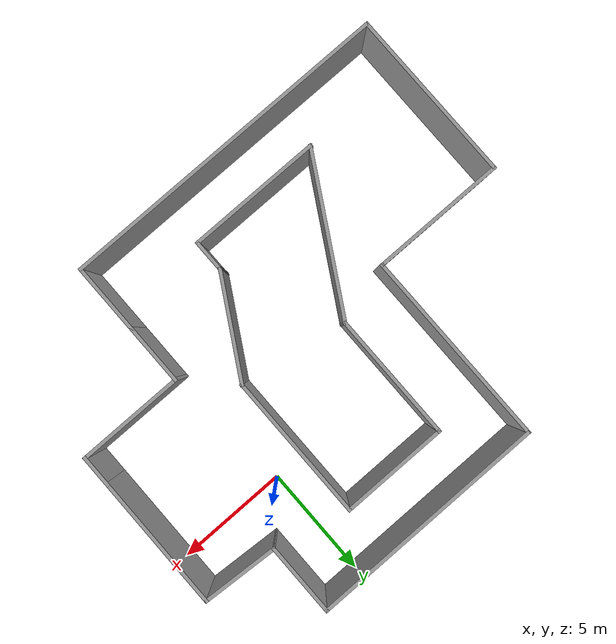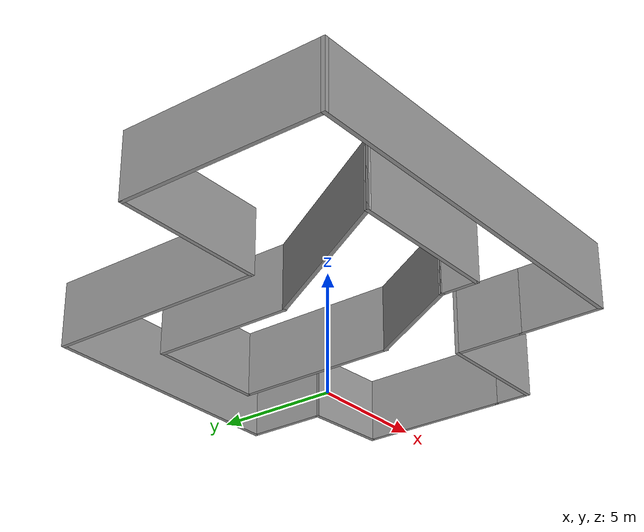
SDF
<?xml version='1.0'?>
<sdf version='1.6'>
  <model name='room4'>
    <pose frame=''>-4.96735 -3.31756 0 0 -0 0</pose>
    <link name='Wall_10'>
      <collision name='Wall_10_Collision'>
        <geometry>
          <box>
            <size>2.75 0.15 2.5</size>
          </box>
        </geometry>
        <pose frame=''>0 0 1.25 0 -0 0</pose>
      </collision>
      <visual name='Wall_10_Visual'>
        <pose frame=''>0 0 1.25 0 -0 0</pose>
        <geometry>
          <box>
            <size>2.75 0.15 2.5</size>
          </box>
        </geometry>
        <material>
          <script>
            <uri>file://media/materials/scripts/gazebo.material</uri>
            <name>Gazebo/Grey</name>
          </script>
          <ambient>1 1 1 1</ambient>
        </material>
      </visual>
      <pose frame=''>5.12277 -3.7 0 0 0 -1.5708</pose>
    </link>
    <link name='Wall_11'>
      <collision name='Wall_11_Collision'>
        <geometry>
          <box>
            <size>3.25 0.15 2.5</size>
          </box>
        </geometry>
        <pose frame=''>0 0 1.25 0 -0 0</pose>
      </collision>
      <visual name='Wall_11_Visual'>
        <pose frame=''>0 0 1.25 0 -0 0</pose>
        <geometry>
          <box>
            <size>3.25 0.15 2.5</size>
          </box>
        </geometry>
        <material>
          <script>
            <uri>file://media/materials/scripts/gazebo.material</uri>
            <name>Gazebo/Grey</name>
          </script>
          <ambient>1 1 1 1</ambient>
        </material>
      </visual>
      <pose frame=''>5.12277 -6.55 0 0 0 -1.5708</pose>
    </link>
    <link name='Wall_12'>
      <collision name='Wall_12_Collision'>
        <geometry>
          <box>
            <size>15 0.15 2.5</size>
          </box>
        </geometry>
        <pose frame=''>0 0 1.25 0 -0 0</pose>
      </collision>
      <visual name='Wall_12_Visual'>
        <pose frame=''>0 0 1.25 0 -0 0</pose>
        <geometry>
          <box>
            <size>15 0.15 2.5</size>
          </box>
        </geometry>
        <material>
          <script>
            <uri>file://media/materials/scripts/gazebo.material</uri>
            <name>Gazebo/Grey</name>
          </script>
          <ambient>1 1 1 1</ambient>
        </material>
      </visual>
      <pose frame=''>-2.30223 -8.1 0 0 -0 3.14159</pose>
    </link>
    <link name='Wall_13'>
      <collision name='Wall_13_Collision'>
        <geometry>
          <box>
            <size>7.75 0.15 2.5</size>
          </box>
        </geometry>
        <pose frame=''>0 0 1.25 0 -0 0</pose>
      </collision>
      <visual name='Wall_13_Visual'>
        <pose frame=''>0 0 1.25 0 -0 0</pose>
        <geometry>
          <box>
            <size>7.75 0.15 2.5</size>
          </box>
        </geometry>
        <material>
          <script>
            <uri>file://media/materials/scripts/gazebo.material</uri>
            <name>Gazebo/Grey</name>
          </script>
          <ambient>1 1 1 1</ambient>
        </material>
      </visual>
      <pose frame=''>-9.72723 -4.3 0 0 -0 1.5708</pose>
    </link>
    <link name='Wall_14'>
      <collision name='Wall_14_Collision'>
        <geometry>
          <box>
            <size>6 0.15 2.5</size>
          </box>
        </geometry>
        <pose frame=''>0 0 1.25 0 -0 0</pose>
      </collision>
      <visual name='Wall_14_Visual'>
        <pose frame=''>0 0 1.25 0 -0 0</pose>
        <geometry>
          <box>
            <size>6 0.15 2.5</size>
          </box>
        </geometry>
        <material>
          <script>
            <uri>file://media/materials/scripts/gazebo.material</uri>
            <name>Gazebo/Grey</name>
          </script>
          <ambient>1 1 1 1</ambient>
        </material>
      </visual>
      <pose frame=''>-6.80223 -0.5 0 0 -0 0</pose>
    </link>
    <link name='Wall_15'>
      <collision name='Wall_15_Collision'>
        <geometry>
          <box>
            <size>8.75 0.15 2.5</size>
          </box>
        </geometry>
        <pose frame=''>0 0 1.25 0 -0 0</pose>
      </collision>
      <visual name='Wall_15_Visual'>
        <pose frame=''>0 0 1.25 0 -0 0</pose>
        <geometry>
          <box>
            <size>8.75 0.15 2.5</size>
          </box>
        </geometry>
        <material>
          <script>
            <uri>file://media/materials/scripts/gazebo.material</uri>
            <name>Gazebo/Grey</name>
          </script>
          <ambient>1 1 1 1</ambient>
        </material>
      </visual>
      <pose frame=''>-3.87723 3.8 0 0 -0 1.5708</pose>
    </link>
    <link name='Wall_16'>
      <collision name='Wall_16_Collision'>
        <geometry>
          <box>
            <size>10.5 0.15 2.5</size>
          </box>
        </geometry>
        <pose frame=''>0 0 1.25 0 -0 0</pose>
      </collision>
      <visual name='Wall_16_Visual'>
        <pose frame=''>0 0 1.25 0 -0 0</pose>
        <geometry>
          <box>
            <size>10.5 0.15 2.5</size>
          </box>
        </geometry>
        <material>
          <script>
            <uri>file://media/materials/scripts/gazebo.material</uri>
            <name>Gazebo/Grey</name>
          </script>
          <ambient>1 1 1 1</ambient>
        </material>
      </visual>
      <pose frame=''>1.29777 8.1 0 0 -0 0</pose>
    </link>
    <link name='Wall_17'>
      <collision name='Wall_17_Collision'>
        <geometry>
          <box>
            <size>3.25 0.15 2.5</size>
          </box>
        </geometry>
        <pose frame=''>0 0 1.25 0 -0 0</pose>
      </collision>
      <visual name='Wall_17_Visual'>
        <pose frame=''>0 0 1.25 0 -0 0</pose>
        <geometry>
          <box>
            <size>3.25 0.15 2.5</size>
          </box>
        </geometry>
        <material>
          <script>
            <uri>file://media/materials/scripts/gazebo.material</uri>
            <name>Gazebo/Grey</name>
          </script>
          <ambient>1 1 1 1</ambient>
        </material>
      </visual>
      <pose frame=''>6.47277 6.55 0 0 0 -1.5708</pose>
    </link>
    <link name='Wall_18'>
      <collision name='Wall_18_Collision'>
        <geometry>
          <box>
            <size>3.40615 0.15 2.5</size>
          </box>
        </geometry>
        <pose frame=''>0 0 1.25 0 -0 0</pose>
      </collision>
      <visual name='Wall_18_Visual'>
        <pose frame=''>0 0 1.25 0 -0 0</pose>
        <geometry>
          <box>
            <size>3.40615 0.15 2.5</size>
          </box>
        </geometry>
        <material>
          <script>
            <uri>file://media/materials/scripts/gazebo.material</uri>
            <name>Gazebo/Grey</name>
          </script>
          <ambient>1 1 1 1</ambient>
        </material>
      </visual>
      <pose frame=''>8.09777 4.9 0 0 0 -0.061461</pose>
    </link>
    <link name='Wall_19'>
      <collision name='Wall_19_Collision'>
        <geometry>
          <box>
            <size>6 0.15 2.5</size>
          </box>
        </geometry>
        <pose frame=''>0 0 1.25 0 -0 0</pose>
      </collision>
      <visual name='Wall_19_Visual'>
        <pose frame=''>0 0 1.25 0 -0 0</pose>
        <geometry>
          <box>
            <size>6 0.15 2.5</size>
          </box>
        </geometry>
        <material>
          <script>
            <uri>file://media/materials/scripts/gazebo.material</uri>
            <name>Gazebo/Grey</name>
          </script>
          <ambient>1 1 1 1</ambient>
        </material>
      </visual>
      <pose frame=''>9.72277 1.875 0 0 0 -1.5708</pose>
    </link>
    <link name='Wall_23'>
      <collision name='Wall_23_Collision'>
        <geometry>
          <box>
            <size>4.75 0.15 2.5</size>
          </box>
        </geometry>
        <pose frame=''>0 0 1.25 0 -0 0</pose>
      </collision>
      <visual name='Wall_23_Visual'>
        <pose frame=''>0 0 1.25 0 -0 0</pose>
        <geometry>
          <box>
            <size>4.75 0.15 2.5</size>
          </box>
        </geometry>
        <material>
          <script>
            <uri>file://media/materials/scripts/gazebo.material</uri>
            <name>Gazebo/Grey</name>
          </script>
          <ambient>1 1 1 1</ambient>
        </material>
      </visual>
      <pose frame=''>1.00021 5.79446 0 0 -0 0</pose>
    </link>
    <link name='Wall_24'>
      <collision name='Wall_24_Collision'>
        <geometry>
          <box>
            <size>6.5 0.15 2.5</size>
          </box>
        </geometry>
        <pose frame=''>0 0 1.25 0 -0 0</pose>
      </collision>
      <visual name='Wall_24_Visual'>
        <pose frame=''>0 0 1.25 0 -0 0</pose>
        <geometry>
          <box>
            <size>6.5 0.15 2.5</size>
          </box>
        </geometry>
        <material>
          <script>
            <uri>file://media/materials/scripts/gazebo.material</uri>
            <name>Gazebo/Grey</name>
          </script>
          <ambient>1 1 1 1</ambient>
        </material>
      </visual>
      <pose frame=''>3.30021 2.61946 0 0 0 -1.5708</pose>
    </link>
    <link name='Wall_25'>
      <collision name='Wall_25_Collision'>
        <geometry>
          <box>
            <size>4.75 0.15 2.5</size>
          </box>
        </geometry>
        <pose frame=''>0 0 1.25 0 -0 0</pose>
      </collision>
      <visual name='Wall_25_Visual'>
        <pose frame=''>0 0 1.25 0 -0 0</pose>
        <geometry>
          <box>
            <size>4.75 0.15 2.5</size>
          </box>
        </geometry>
        <material>
          <script>
            <uri>file://media/materials/scripts/gazebo.material</uri>
            <name>Gazebo/Grey</name>
          </script>
          <ambient>1 1 1 1</ambient>
        </material>
      </visual>
      <pose frame=''>2.15021 -2.5474 0 0 0 -2.0944</pose>
    </link>
    <link name='Wall_26'>
      <collision name='Wall_26_Collision'>
        <geometry>
          <box>
            <size>1.5 0.15 2.5</size>
          </box>
        </geometry>
        <pose frame=''>0 0 1.25 0 -0 0</pose>
      </collision>
      <visual name='Wall_26_Visual'>
        <pose frame=''>0 0 1.25 0 -0 0</pose>
        <geometry>
          <box>
            <size>1.5 0.15 2.5</size>
          </box>
        </geometry>
        <material>
          <script>
            <uri>file://media/materials/scripts/gazebo.material</uri>
            <name>Gazebo/Grey</name>
          </script>
          <ambient>1 1 1 1</ambient>
        </material>
      </visual>
      <pose frame=''>1.00021 -5.21426 0 0 0 -1.5708</pose>
    </link>
    <link name='Wall_27'>
      <collision name='Wall_27_Collision'>
        <geometry>
          <box>
            <size>6 0.15 2.5</size>
          </box>
        </geometry>
        <pose frame=''>0 0 1.25 0 -0 0</pose>
      </collision>
      <visual name='Wall_27_Visual'>
        <pose frame=''>0 0 1.25 0 -0 0</pose>
        <geometry>
          <box>
            <size>6 0.15 2.5</size>
          </box>
        </geometry>
        <material>
          <script>
            <uri>file://media/materials/scripts/gazebo.material</uri>
            <name>Gazebo/Grey</name>
          </script>
          <ambient>1 1 1 1</ambient>
        </material>
      </visual>
      <pose frame=''>-1.92479 -5.88926 0 0 -0 3.14159</pose>
    </link>
    <link name='Wall_28'>
      <collision name='Wall_28_Collision'>
        <geometry>
          <box>
            <size>7.25 0.15 2.5</size>
          </box>
        </geometry>
        <pose frame=''>0 0 1.25 0 -0 0</pose>
      </collision>
      <visual name='Wall_28_Visual'>
        <pose frame=''>0 0 1.25 0 -0 0</pose>
        <geometry>
          <box>
            <size>7.25 0.15 2.5</size>
          </box>
        </geometry>
        <material>
          <script>
            <uri>file://media/materials/scripts/gazebo.material</uri>
            <name>Gazebo/Grey</name>
          </script>
          <ambient>1 1 1 1</ambient>
        </material>
      </visual>
      <pose frame=''>-3.07479 -2.81487 0 0 -0 1.0472</pose>
    </link>
    <link name='Wall_29'>
      <collision name='Wall_29_Collision'>
        <geometry>
          <box>
            <size>5.68494 0.15 2.5</size>
          </box>
        </geometry>
        <pose frame=''>0 0 1.25 0 -0 0</pose>
      </collision>
      <visual name='Wall_29_Visual'>
        <pose frame=''>0 0 1.25 0 -0 0</pose>
        <geometry>
          <box>
            <size>5.68494 0.15 2.5</size>
          </box>
        </geometry>
        <material>
          <script>
            <uri>file://media/materials/scripts/gazebo.material</uri>
            <name>Gazebo/Grey</name>
          </script>
          <ambient>1 1 1 1</ambient>
        </material>
      </visual>
      <pose frame=''>-1.29979 3.02699 0 0 -0 1.5708</pose>
    </link>
    <link name='Wall_5'>
      <collision name='Wall_5_Collision'>
        <geometry>
          <box>
            <size>1.5 0.15 2.5</size>
          </box>
        </geometry>
        <pose frame=''>0 0 1.25 0 -0 0</pose>
      </collision>
      <visual name='Wall_5_Visual'>
        <pose frame=''>0 0 1.25 0 -0 0</pose>
        <geometry>
          <box>
            <size>1.5 0.15 2.5</size>
          </box>
        </geometry>
        <material>
          <script>
            <uri>file://media/materials/scripts/gazebo.material</uri>
            <name>Gazebo/Grey</name>
          </script>
          <ambient>1 1 1 1</ambient>
        </material>
      </visual>
      <pose frame=''>9.72277 -1.725 0 0 0 -1.5708</pose>
    </link>
    <link name='Wall_6'>
      <collision name='Wall_6_Collision'>
        <geometry>
          <box>
            <size>4.75 0.15 2.5</size>
          </box>
        </geometry>
        <pose frame=''>0 0 1.25 0 -0 0</pose>
      </collision>
      <visual name='Wall_6_Visual'>
        <pose frame=''>0 0 1.25 0 -0 0</pose>
        <geometry>
          <box>
            <size>4.75 0.15 2.5</size>
          </box>
        </geometry>
        <material>
          <script>
            <uri>file://media/materials/scripts/gazebo.material</uri>
            <name>Gazebo/Grey</name>
          </script>
          <ambient>1 1 1 1</ambient>
        </material>
      </visual>
      <pose frame=''>7.42277 -2.4 0 0 -0 3.14159</pose>
    </link>
    <static>1</static>
  </model>
</sdf>
